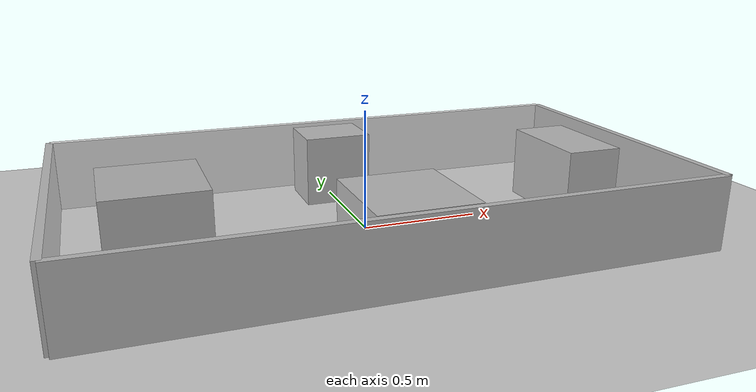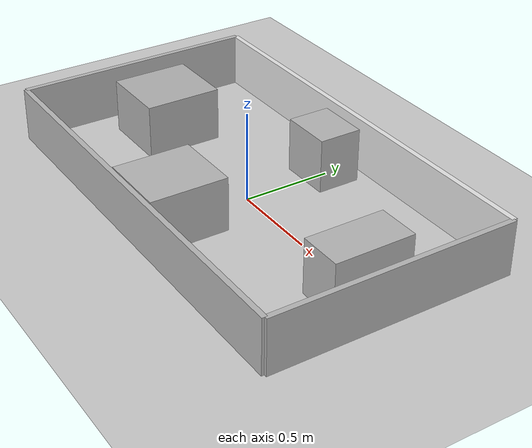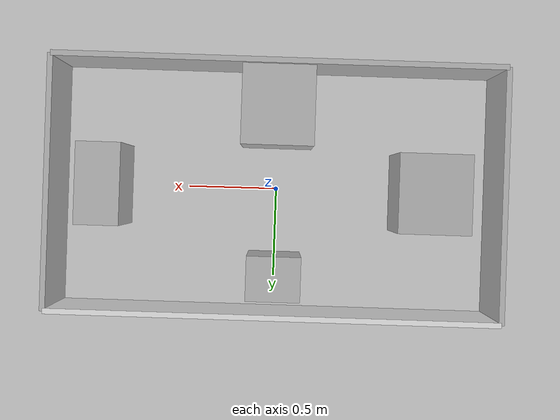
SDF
<?xml version="1.0" ?>
<sdf version="1.7">
  <world name="maze_world">
    <!-- lighting & ground -->
    <include>
      <uri>model://sun</uri>
    </include>
    <include>
      <uri>model://ground_plane</uri>
    </include>

    <!-- ================================
         Border walls (static)
         ================================ -->
    <model name="border_walls" static="true">
      <pose>0 0 0 0 0 0</pose>
      <link name="north_wall">
        <pose>0 0.6858 0.1524 0 0 0</pose>
        <collision name="col">
          <geometry>
            <box>
              <size>2.438 0.03 0.3048</size>
            </box>
          </geometry>
        </collision>
        <visual name="vis">
          <geometry>
            <box>
              <size>2.438 0.03 0.3048</size>
            </box>
          </geometry>
          <material>
            <ambient>0.2 0.2 0.2 1</ambient>
            <diffuse>0.9 0.9 0.9 1</diffuse>
          </material>
        </visual>
      </link>

      <link name="south_wall">
        <pose>0 -0.6858 0.1524 0 0 0</pose>
        <collision name="col">
          <geometry><box><size>2.438 0.03 0.3048</size></box></geometry>
        </collision>
        <visual name="vis">
          <geometry><box><size>2.438 0.03 0.3048</size></box></geometry>
        </visual>
      </link>

      <link name="west_wall">
        <pose>-1.219 0 0.1524 0 0 0</pose>
        <collision name="col">
          <geometry><box><size>0.03 1.3716 0.3048</size></box></geometry>
        </collision>
        <visual name="vis">
          <geometry><box><size>0.03 1.3716 0.3048</size></box></geometry>
        </visual>
      </link>

      <link name="east_wall">
        <pose>1.219 0 0.1524 0 0 0</pose>
        <collision name="col">
          <geometry><box><size>0.03 1.3716 0.3048</size></box></geometry>
        </collision>
        <visual name="vis">
          <geometry><box><size>0.03 1.3716 0.3048</size></box></geometry>
        </visual>
      </link>
    </model>

    <!-- Place boxes slightly in from the walls -->
    <!-- helper values (comment): clearance ~ 0.20 m from nearest wall -->
    <!-- z = 0.3048/2 to sit on ground -->

    <model name="box_1" static="true">
      <!-- left interior -->
      <pose>-0.85 0.0 0.1524 0 0 0</pose>
      <link name="link">
        <collision name="col">
          <geometry><box><size>0.3937 0.4318 0.3048</size></box></geometry>
        </collision>
        <visual name="vis">
          <geometry><box><size>0.3937 0.4318 0.3048</size></box></geometry>
          <material><diffuse>0.7 0.7 0.7 1</diffuse></material>
        </visual>
      </link>
    </model>

    <model name="box_2" static="true">
      <!-- near bottom center -->
      <pose>0.0 -0.45 0.1524 0 0 0</pose>
      <link name="link">
        <collision name="col">
          <geometry><box><size>0.3937 0.4318 0.3048</size></box></geometry>
        </collision>
        <visual name="vis">
          <geometry><box><size>0.3937 0.4318 0.3048</size></box></geometry>
        </visual>
      </link>
    </model>

    <model name="box_3" static="true">
      <!-- right interior, portrait-oriented -->
      <pose>0.95 0.0 0.1524 0 0 0</pose>
      <link name="link">
        <collision name="col">
          <geometry><box><size>0.2413 0.4445 0.3048</size></box></geometry>
        </collision>
        <visual name="vis">
          <geometry><box><size>0.2413 0.4445 0.3048</size></box></geometry>
        </visual>
      </link>
    </model>

    <model name="box_4" static="true">
      <!-- near top center -->
      <pose>0.0 0.48 0.1524 0 0 0</pose>
      <link name="link">
        <collision name="col">
          <geometry><box><size>0.2921 0.2413 0.3048</size></box></geometry>
        </collision>
        <visual name="vis">
          <geometry><box><size>0.2921 0.2413 0.3048</size></box></geometry>
        </visual>
      </link>
    </model>

    <!-- friction tuned a bit “grippy” for TB3 Burger -->
    <physics type="ode">
      <max_step_size>0.001</max_step_size>
      <real_time_update_rate>1000</real_time_update_rate>
    </physics>
  </world>
</sdf>
